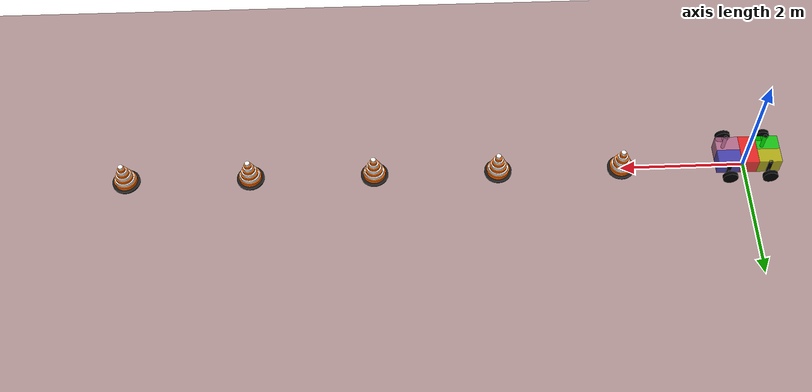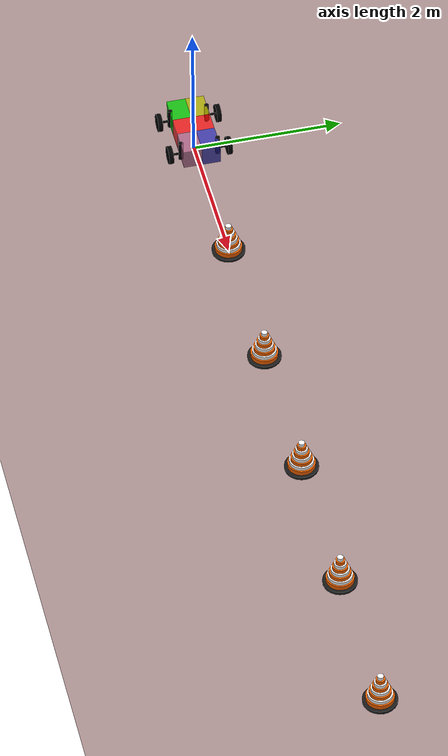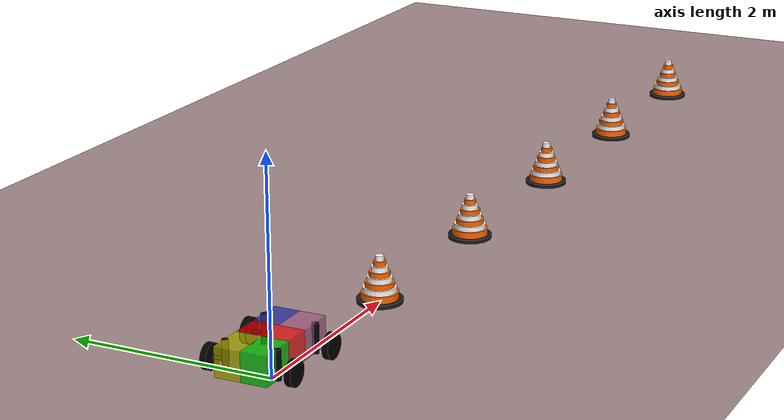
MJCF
<?xml version="1.0" ?>
<!-- |    This document was autogenerated by xacro from model/ettorone.xml.xacro       | -->
<!-- |    EDITING THIS FILE BY HAND IS NOT RECOMMENDED                                 | -->
<mujoco model="rover">
  <compiler angle="degree" coordinate="local"/>

  <option gravity="0 0 -9.81"
          timestep="0.002"
          solver="Newton"
          cone="elliptic"
          integrator="implicitfast"
          impratio="10"/>

  <asset>

    <texture name="grid" type="2d" builtin="checker"
             rgb1="1 0.8 0.8"
             rgb2="0.3 0.3 0.3"
             width="512" height="512"/>

    <material name="grid_mat" texture="grid" texrepeat="30 30"/>
  </asset>

  <worldbody>

    <light diffuse="1 1 1" dir="0 0 -1" pos="0 0 50"/>

    <geom name="floor" type="plane"
          size="50 50 0.1"
          material="grid_mat"/>

    <body name="base" pos="0 0 0.3">
      <joint name="base_free" type="free"/>

      <geom mass="15" rgba="1 0 0 0.7" size="0.1375 0.25 0.1375" type="box" />

      <!-- ================= FRONT LEFT ================= -->
      <body name="fl_module" pos="0.32 0.125 0">
        <geom mass="15" rgba="0.2 0.2 0.7 0.8" size="0.1825 0.125 0.1375" type="box"/>

        <body name="fl_steering_link" pos="0 0.125 0">
          <joint axis="0 0 1"
                 name="fl_steering_joint"
                 type="hinge"
                 damping="0.15"
                 frictionloss="0.05"
                 armature="0.1"/>

          <geom rgba="0 0 0 1" size="0.03 0.1375" type="cylinder"/>

          <body euler="90 0 0" name="fl_offset_link" pos="0 0.075 -0.045">
            <geom mass="2.5" rgba="0 0 0 1" size="0.015 0.075" type="cylinder"/>
          </body>

          <body euler="90 0 0" name="fl_wheel" pos="0 0.15 -0.045">
            <joint axis="0 0 1"
                   name="fl_wheel_joint"
                   type="hinge"
                   damping="0.15"
                   frictionloss="0.15"
                   armature="0.12"/>

            <geom condim="6"
                  friction="0.9 0.001 0.001"
                  mass="1"
                  rgba="0 0 0 1"
                  size="0.12 0.03"
                  type="cylinder"/>
          </body>
        </body>
      </body>

      <!-- ================= BACK LEFT ================= -->
      <body name="bl_module" pos="-0.32 0.125 0">
        <geom mass="15" rgba="0.7 0.7 0.0 0.8" size="0.1825 0.125 0.1375" type="box"/>

        <body name="bl_steering_link" pos="0 0.125 0">
          <joint axis="0 0 1"
                 name="bl_steering_joint"
                 type="hinge"
                 damping="0.15"
                 frictionloss="0.05"
                 armature="0.1"/>

          <geom rgba="0 0 0 1" size="0.03 0.1375" type="cylinder"/>

          <body euler="90 0 0" name="bl_offset_link" pos="0 0.075 -0.045">
            <geom mass="2.5" rgba="0 0 0 1" size="0.015 0.075" type="cylinder"/>
          </body>

          <body euler="90 0 0" name="bl_wheel" pos="0 0.15 -0.045">
            <joint axis="0 0 1"
                   name="bl_wheel_joint"
                   type="hinge"
                   damping="0.15"
                   frictionloss="0.15"
                   armature="0.12"/>

            <geom condim="6"
                  friction="0.9 0.001 0.001"
                  mass="1"
                  rgba="0 0 0 1"
                  size="0.12 0.03"
                  type="cylinder"/>
          </body>
        </body>
      </body>

      <!-- ================= FRONT RIGHT ================= -->
      <body name="fr_module" pos="0.32 -0.125 0">
        <geom mass="15" rgba="0.7 0.4 0.55 0.8" size="0.1825 0.125 0.1375" type="box"/>

        <body name="fr_steering_link" pos="0 -0.125 0">
          <joint axis="0 0 1"
                 name="fr_steering_joint"
                 type="hinge"
                 damping="0.15"
                 frictionloss="0.05"
                 armature="0.1"/>

          <geom rgba="0 0 0 1" size="0.03 0.1375" type="cylinder"/>

          <body euler="90 0 0" name="fr_offset_link" pos="0 -0.075 -0.045">
            <geom mass="2.5" rgba="0 0 0 1" size="0.015 0.075" type="cylinder"/>
          </body>

          <body euler="90 0 0" name="fr_wheel" pos="0 -0.15 -0.045">
            <joint axis="0 0 1"
                   name="fr_wheel_joint"
                   type="hinge"
                   damping="0.15"
                   frictionloss="0.15"
                   armature="0.12"/>

            <geom condim="6"
                  friction="0.9 0.001 0.001"
                  mass="1"
                  rgba="0 0 0 1"
                  size="0.12 0.03"
                  type="cylinder"/>
          </body>
        </body>
      </body>

      <!-- ================= BACK RIGHT ================= -->
      <body name="br_module" pos="-0.32 -0.125 0">
        <geom mass="15" rgba="0 0.8 0 0.8" size="0.1825 0.125 0.1375" type="box"/>

        <body name="br_steering_link" pos="0 -0.125 0">
          <joint axis="0 0 1"
                 name="br_steering_joint"
                 type="hinge"
                 damping="0.15"
                 frictionloss="0.05"
                 armature="0.1"/>

          <geom rgba="0 0 0 1" size="0.03 0.1375" type="cylinder"/>

          <body euler="90 0 0" name="br_offset_link" pos="0 -0.075 -0.045">
            <geom mass="2.5" rgba="0 0 0 1" size="0.015 0.075" type="cylinder"/>
          </body>

          <body euler="90 0 0" name="br_wheel" pos="0 -0.15 -0.045">
            <joint axis="0 0 1"
                   name="br_wheel_joint"
                   type="hinge"
                   damping="0.15"
                   frictionloss="0.15"
                   armature="0.12"/>

            <geom condim="6"
                  friction="0.9 0.001 0.001"
                  mass="1"
                  rgba="0 0 0 1"
                  size="0.12 0.03"
                  type="cylinder"/>
          </body>
        </body>
      </body>

    </body>

    <body name="cone_1" pos="2 0 0">
     <joint type="free"/>
      <inertial pos="0 0 0.21"
                mass="0.3"
                diaginertia="0.0015 0.0015 0.0003"/>
        <geom type="cylinder" size="0.22 0.02" pos="0 0 0.02" rgba="0.1 0.1 0.1 1"/>

        <geom type="cylinder" size="0.18 0.035" pos="0 0 0.07" rgba="1 0.4 0 1"/>
        <geom type="cylinder" size="0.16 0.035" pos="0 0 0.12" rgba="1 1 1 1"/>

        <geom type="cylinder" size="0.14 0.035" pos="0 0 0.17" rgba="1 0.4 0 1"/>
        <geom type="cylinder" size="0.12 0.035" pos="0 0 0.22" rgba="1 1 1 1"/>

        <geom type="cylinder" size="0.10 0.035" pos="0 0 0.27" rgba="1 0.4 0 1"/>
        <geom type="cylinder" size="0.08 0.035" pos="0 0 0.32" rgba="1 1 1 1"/>

        <geom type="cylinder" size="0.06 0.035" pos="0 0 0.37" rgba="1 0.4 0 1"/>
        <geom type="cylinder" size="0.04 0.035" pos="0 0 0.42" rgba="1 1 1 1"/>
    </body>
    <body name="cone_5" pos="10 0 0">
     <joint type="free"/>
      <inertial pos="0 0 0.21"
                mass="0.3"
                diaginertia="0.0015 0.0015 0.0003"/>
      <geom type="cylinder" size="0.22 0.02" pos="0 0 0.02" rgba="0.1 0.1 0.1 1"/>

      <geom type="cylinder" size="0.18 0.035" pos="0 0 0.07" rgba="1 0.4 0 1"/>
      <geom type="cylinder" size="0.16 0.035" pos="0 0 0.12" rgba="1 1 1 1"/>

      <geom type="cylinder" size="0.14 0.035" pos="0 0 0.17" rgba="1 0.4 0 1"/>
      <geom type="cylinder" size="0.12 0.035" pos="0 0 0.22" rgba="1 1 1 1"/>

      <geom type="cylinder" size="0.10 0.035" pos="0 0 0.27" rgba="1 0.4 0 1"/>
      <geom type="cylinder" size="0.08 0.035" pos="0 0 0.32" rgba="1 1 1 1"/>

      <geom type="cylinder" size="0.06 0.035" pos="0 0 0.37" rgba="1 0.4 0 1"/>
      <geom type="cylinder" size="0.04 0.035" pos="0 0 0.42" rgba="1 1 1 1"/>
    </body>
    <body name="cone_2" pos="4 0 0">
     <joint type="free"/>
      <inertial pos="0 0 0.21"
                mass="0.3"
                diaginertia="0.0015 0.0015 0.0003"/>
      <geom type="cylinder" size="0.22 0.02" pos="0 0 0.02" rgba="0.1 0.1 0.1 1"/>

      <geom type="cylinder" size="0.18 0.035" pos="0 0 0.07" rgba="1 0.4 0 1"/>
      <geom type="cylinder" size="0.16 0.035" pos="0 0 0.12" rgba="1 1 1 1"/>

      <geom type="cylinder" size="0.14 0.035" pos="0 0 0.17" rgba="1 0.4 0 1"/>
      <geom type="cylinder" size="0.12 0.035" pos="0 0 0.22" rgba="1 1 1 1"/>

      <geom type="cylinder" size="0.10 0.035" pos="0 0 0.27" rgba="1 0.4 0 1"/>
      <geom type="cylinder" size="0.08 0.035" pos="0 0 0.32" rgba="1 1 1 1"/>

      <geom type="cylinder" size="0.06 0.035" pos="0 0 0.37" rgba="1 0.4 0 1"/>
      <geom type="cylinder" size="0.04 0.035" pos="0 0 0.42" rgba="1 1 1 1"/>
    </body>
    <body name="cone_3" pos="6 0 0">
     <joint type="free"/>
      <inertial pos="0 0 0.21"
                mass="0.3"
                diaginertia="0.0015 0.0015 0.0003"/>
      <geom type="cylinder" size="0.22 0.02" pos="0 0 0.02" rgba="0.1 0.1 0.1 1"/>

      <geom type="cylinder" size="0.18 0.035" pos="0 0 0.07" rgba="1 0.4 0 1"/>
      <geom type="cylinder" size="0.16 0.035" pos="0 0 0.12" rgba="1 1 1 1"/>

      <geom type="cylinder" size="0.14 0.035" pos="0 0 0.17" rgba="1 0.4 0 1"/>
      <geom type="cylinder" size="0.12 0.035" pos="0 0 0.22" rgba="1 1 1 1"/>

      <geom type="cylinder" size="0.10 0.035" pos="0 0 0.27" rgba="1 0.4 0 1"/>
      <geom type="cylinder" size="0.08 0.035" pos="0 0 0.32" rgba="1 1 1 1"/>

      <geom type="cylinder" size="0.06 0.035" pos="0 0 0.37" rgba="1 0.4 0 1"/>
      <geom type="cylinder" size="0.04 0.035" pos="0 0 0.42" rgba="1 1 1 1"/>
    </body>
    <body name="cone_4" pos="8 0 0">
     <joint type="free"/>
    <inertial pos="0 0 0.21"
              mass="0.3"
              diaginertia="0.0015 0.0015 0.0003"/>
      <geom type="cylinder" size="0.22 0.02" pos="0 0 0.02" rgba="0.1 0.1 0.1 1"/>

      <geom type="cylinder" size="0.18 0.035" pos="0 0 0.07" rgba="1 0.4 0 1"/>
      <geom type="cylinder" size="0.16 0.035" pos="0 0 0.12" rgba="1 1 1 1"/>

      <geom type="cylinder" size="0.14 0.035" pos="0 0 0.17" rgba="1 0.4 0 1"/>
      <geom type="cylinder" size="0.12 0.035" pos="0 0 0.22" rgba="1 1 1 1"/>

      <geom type="cylinder" size="0.10 0.035" pos="0 0 0.27" rgba="1 0.4 0 1"/>
      <geom type="cylinder" size="0.08 0.035" pos="0 0 0.32" rgba="1 1 1 1"/>

      <geom type="cylinder" size="0.06 0.035" pos="0 0 0.37" rgba="1 0.4 0 1"/>
      <geom type="cylinder" size="0.04 0.035" pos="0 0 0.42" rgba="1 1 1 1"/>

    </body>

  </worldbody>

  <actuator>
    <motor ctrlrange="-25 25" joint="fl_wheel_joint"/>
    <motor ctrlrange="-25 25" joint="fr_wheel_joint"/>
    <motor ctrlrange="-25 25" joint="bl_wheel_joint"/>
    <motor ctrlrange="-25 25" joint="br_wheel_joint"/>

    <motor ctrlrange="-16 16" joint="fl_steering_joint"/>
    <motor ctrlrange="-16 16" joint="fr_steering_joint"/>
    <motor ctrlrange="-16 16" joint="bl_steering_joint"/>
    <motor ctrlrange="-16 16" joint="br_steering_joint"/>
  </actuator>

</mujoco>
